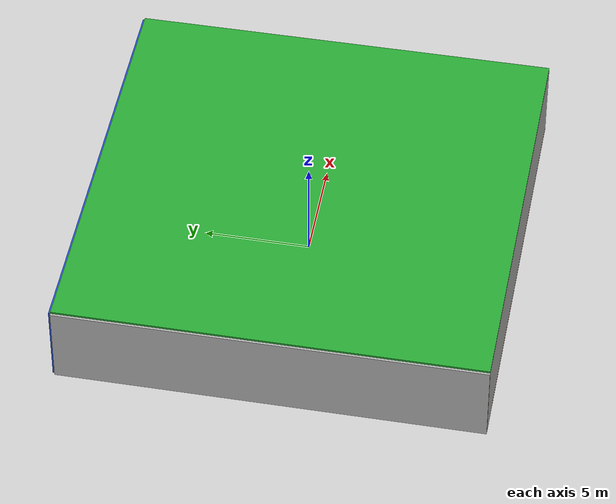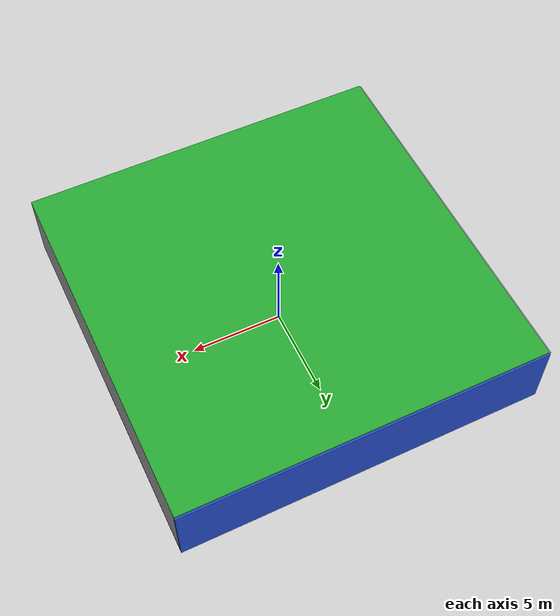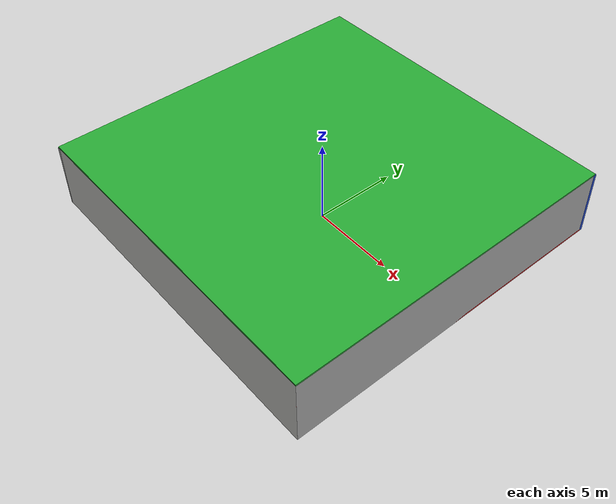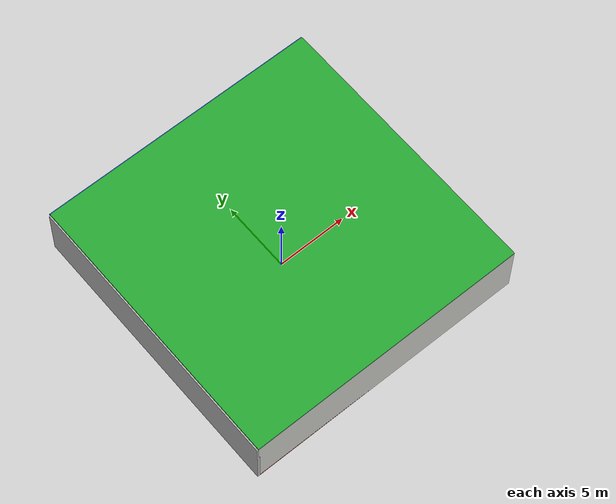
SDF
<sdf version="1.4">
 <world name="default">
  <physics type="ode">
   <max_step_size>0.001</max_step_size>
   <real_time_factor>1</real_time_factor>
   <real_time_update_rate>1000</real_time_update_rate>
   <gravity>0 0 -9.8</gravity>
  </physics>
  <scene><ambient>0.4 0.4 0.4 1</ambient><background>0.7 0.7 0.7 1</background><shadows>1</shadows></scene>
  <model name="Surrounding">
   <static>1</static>
   <link name="Ceiling">
    <collision name="Ceiling_Collision"><geometry><box><size>20 20 0.1</size></box></geometry></collision>
    <visual name="Ceiling_Visual">
     <geometry><box><size>20 20 0.1</size></box></geometry>
     <material>
      <script><uri>file://media/materials/scripts/gazebo.material</uri><name>Gazebo/GreenGlow</name></script>
     </material>
    </visual>
    <pose>0 0 4.05 0 0 0</pose>
   </link>
   <link name="Wall_South">
    <collision name="Wall_South_Collision">
     <geometry><box><size>20 0 4</size></box></geometry>
     <pose>0 0 2 0 -0 0</pose>
    </collision>
    <visual name="Wall_South_Visual">
     <pose>0 0 2 0 -0 0</pose>
     <geometry><box><size>20 0 4</size></box></geometry>
     <material>
      <script><uri>file://media/materials/scripts/gazebo.material</uri><name>Gazebo/CeilingTiled</name></script>
     </material>
    </visual>
    <velocity_decay><linear>0</linear><angular>0</angular></velocity_decay>
    <pose>0 -10 0 0 -0 0</pose>
   </link>
   <link name="Wall_East">
    <collision name="Wall_21_Collision">
     <geometry><box><size>20 0 4</size></box></geometry>
     <pose>0 0 2 0 -0 0</pose>
    </collision>
    <visual name="Wall_21_Visual">
     <pose>0 0 2 0 -0 0</pose>
     <geometry><box><size>20 0 4</size></box></geometry>
     <material>
      <script><uri>file://media/materials/scripts/gazebo.material</uri><name>Gazebo/LightOff</name></script>
     </material>
    </visual>
    <velocity_decay><linear>0</linear><angular>0</angular></velocity_decay>
    <pose>10 0 0 0 -0 1.5708</pose>
   </link>
   <link name="Wall_North">
    <collision name="Wall_22_Collision">
     <geometry><box><size>20 0.2 4</size></box></geometry>
     <pose>0 0 2 0 -0 0</pose>
    </collision>
    <visual name="Wall_22_Visual">
     <pose>0 0 2 0 -0 0</pose>
     <geometry><box><size>20 0.2 4</size></box></geometry>
     <material>
      <script><uri>file://media/materials/scripts/gazebo.material</uri><name>Gazebo/Blue</name></script>
     </material>
    </visual>
    <velocity_decay><linear>0</linear><angular>0</angular></velocity_decay>
    <pose>0 10 0 0 -0 0</pose>
   </link>
   <link name="Wall_West">
    <collision name="Wall_23_Collision">
     <geometry><box><size>20 0.2 4</size></box></geometry>
     <pose>0 0 2 0 -0 0</pose>
    </collision>
    <visual name="Wall_23_Visual">
     <pose>0 0 2 0 -0 0</pose>
     <geometry><box><size>20 0.2 4</size></box></geometry>
     <material>
      <script><uri>file://media/materials/scripts/gazebo.material</uri><name>Gazebo/LightOff</name></script>
     </material>
    </visual>
    <velocity_decay><linear>0</linear><angular>0</angular></velocity_decay>
    <pose>-10 0 0 0 0 -1.5708</pose>
   </link>
   <link name="Ground_link">
    <collision name="collision">
     <pose>0 0 .05 0 -0 0</pose>
     <geometry><box><size>20 20 0.1</size></box></geometry>
    </collision>
    <visual name="visual">
     <pose>0 0 .05 0 -0 0</pose>
     <geometry><box><size>20 20 0.1</size></box></geometry>
     <material>
      <script><uri>file://media/materials/scripts/gazebo.material</uri><name>Gazebo/RedGlow</name></script>
     </material>
    </visual>
   </link>
   <static>1</static>
  </model>
  <spherical_coordinates>
   <surface_model>EARTH_WGS84</surface_model>
   <latitude_deg>0</latitude_deg>
   <longitude_deg>0</longitude_deg>
   <elevation>0</elevation>
   <heading_deg>0</heading_deg>
  </spherical_coordinates>
  <light name="lightball_0" type="diffuse">
   <diffuse>0.8 0.8 0.8 1</diffuse>
   <specular>0.2 0.2 0.2 1</specular>
   <attenuation>
    <range>100</range>
    <constant>0.7</constant>
    <linear>0.01</linear>
    <quadratic>0.001</quadratic>
   </attenuation>
   <direction>-0.5 0.1 -0.9</direction>
   <pose>5.37861072525 -9.80470671198 1.82521220026 0 0 0</pose>
  </light>
  <light name="lightball_1" type="diffuse">
   <diffuse>0.8 0.8 0.8 1</diffuse>
   <specular>0.2 0.2 0.2 1</specular>
   <attenuation>
    <range>100</range>
    <constant>0.7</constant>
    <linear>0.01</linear>
    <quadratic>0.001</quadratic>
   </attenuation>
   <direction>-0.5 0.1 -0.9</direction>
   <pose>1.93598874748 -7.06972643808 3.73017154437 0 0 0</pose>
  </light>
  <light name="lightball_2" type="diffuse">
   <diffuse>0.8 0.8 0.8 1</diffuse>
   <specular>0.2 0.2 0.2 1</specular>
   <attenuation>
    <range>100</range>
    <constant>0.7</constant>
    <linear>0.01</linear>
    <quadratic>0.001</quadratic>
   </attenuation>
   <direction>-0.5 0.1 -0.9</direction>
   <pose>-7.72865881889 -9.126296807 3.65331092235 0 0 0</pose>
  </light>
  <light name="lightball_3" type="diffuse">
   <diffuse>0.8 0.8 0.8 1</diffuse>
   <specular>0.2 0.2 0.2 1</specular>
   <attenuation>
    <range>100</range>
    <constant>0.7</constant>
    <linear>0.01</linear>
    <quadratic>0.001</quadratic>
   </attenuation>
   <direction>-0.5 0.1 -0.9</direction>
   <pose>-4.82308542196 0.328752021273 2.34337296274 0 0 0</pose>
  </light>
  <light name="lightball_4" type="diffuse">
   <diffuse>0.8 0.8 0.8 1</diffuse>
   <specular>0.2 0.2 0.2 1</specular>
   <attenuation>
    <range>100</range>
    <constant>0.7</constant>
    <linear>0.01</linear>
    <quadratic>0.001</quadratic>
   </attenuation>
   <direction>-0.5 0.1 -0.9</direction>
   <pose>-5.78663603223 8.76218964628 1.04114003459 0 0 0</pose>
  </light>
  <light name="lightball_5" type="diffuse">
   <diffuse>0.8 0.8 0.8 1</diffuse>
   <specular>0.2 0.2 0.2 1</specular>
   <attenuation>
    <range>100</range>
    <constant>0.7</constant>
    <linear>0.01</linear>
    <quadratic>0.001</quadratic>
   </attenuation>
   <direction>-0.5 0.1 -0.9</direction>
   <pose>1.17226084027 5.73572111271 3.55470024689 0 0 0</pose>
  </light>
  <light name="lightball_6" type="diffuse">
   <diffuse>0.8 0.8 0.8 1</diffuse>
   <specular>0.2 0.2 0.2 1</specular>
   <attenuation>
    <range>100</range>
    <constant>0.7</constant>
    <linear>0.01</linear>
    <quadratic>0.001</quadratic>
   </attenuation>
   <direction>-0.5 0.1 -0.9</direction>
   <pose>-1.94846624499 8.85326668627 3.42929773147 0 0 0</pose>
  </light>
  <include>
   <uri>model://textured_shapes</uri>
   <pose>-7.10402690855 -5.41097915938 0 0 0 1.80835270284</pose>
  </include>
  <include><uri>model://table</uri><pose>-5.55035472145 -1.2958480136 0 0 0 2.28241707836</pose></include>
  <include>
   <uri>model://robocup_3Dsim_goal</uri>
   <pose>-3.42091032431 6.46308806813 0 0 0 2.43433143222</pose>
  </include>
  <include><uri>model://table</uri><pose>1.84084395601 -7.46478822133 0 0 0 0.966189017788</pose></include>
  <include><uri>model://table</uri><pose>6.91391906026 -8.33226436377 0 0 0 3.12152123442</pose></include>
 </world>
</sdf>

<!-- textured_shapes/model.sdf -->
<sdf version="1.6">
  <model name="textured_shapes">
    <pose>0 0 0.5 0 0 0</pose>
    <link name="box">
      <pose>0 -1.5 0 0 0 0</pose>
      <collision name="collision">
        <geometry>
          <box>
            <size>1 1 1</size>
          </box>
        </geometry>
      </collision>
      <visual name="visual">
        <geometry>
          <box>
            <size>1 1 1</size>
          </box>
        </geometry>
        <material>
          <script>
            <uri>model://../model_source/models/textured_shapes/materials/scripts</uri>
            <uri>model://../model_source/models/textured_shapes/materials/textures</uri>
            <name>TexturedShape/Squares</name>
          </script>
        </material>
      </visual>
    </link>
    <link name="sphere">
      <collision name="collision">
        <geometry>
          <sphere>
            <radius>0.5</radius>
          </sphere>
        </geometry>
      </collision>
      <visual name="visual">
        <geometry>
          <sphere>
            <radius>0.5</radius>
          </sphere>
        </geometry>
        <material>
          <script>
            <uri>model://../model_source/models/textured_shapes/materials/scripts</uri>
            <uri>model://../model_source/models/textured_shapes/materials/textures</uri>
            <name>TexturedShape/Squares</name>
          </script>
        </material>
      </visual>
    </link>
    <link name="cylinder">
      <pose>0 1.5 0 0 0 0</pose>
      <collision name="collision">
        <geometry>
          <cylinder>
            <radius>0.5</radius>
            <length>1</length>
          </cylinder>
        </geometry>
      </collision>
      <visual name="visual">
        <geometry>
          <cylinder>
            <radius>0.5</radius>
            <length>1</length>
          </cylinder>
        </geometry>
        <material>
          <script>
            <uri>model://../model_source/models/textured_shapes/materials/scripts</uri>
            <uri>model://../model_source/models/textured_shapes/materials/textures</uri>
            <name>TexturedShape/Squares</name>
          </script>
        </material>
      </visual>
    </link>
  </model>
</sdf>

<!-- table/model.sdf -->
<sdf version="1.5">
  <model name="table">
    <static>true</static>
    <link name="link">
      <collision name="surface">
        <pose>0 0 1.0 0 0 0</pose>
        <geometry>
          <box>
            <size>1.5 0.8 0.03</size>
          </box>
        </geometry>
        <surface>
          <friction>
            <ode>
              <mu>0.6</mu>
              <mu2>0.6</mu2>
            </ode>
          </friction>
        </surface>
      </collision>
      <visual name="visual1">
        <pose>0 0 1.0 0 0 0</pose>
        <geometry>
          <box>
            <size>1.5 0.8 0.03</size>
          </box>
        </geometry>
        <material>
          <script>
            <uri>model://media/materials/scripts/gazebo.material</uri>
            <name>Gazebo/Wood</name>
          </script>
        </material>
      </visual>
      <collision name="front_left_leg">
        <pose>0.68 0.38 0.5 0 0 0</pose>
        <geometry>
          <cylinder>
            <radius>0.02</radius>
            <length>1.0</length>
          </cylinder>
        </geometry>
      </collision>
      <visual name="front_left_leg">
        <pose>0.68 0.38 0.5 0 0 0</pose>
        <geometry>
          <cylinder>
            <radius>0.02</radius>
            <length>1.0</length>
          </cylinder>
        </geometry>
        <material>
          <script>
            <uri>model://media/materials/scripts/gazebo.material</uri>
            <name>Gazebo/Grey</name>
          </script>
        </material>
      </visual>
      <collision name="front_right_leg">
        <pose>0.68 -0.38 0.5 0 0 0</pose>
        <geometry>
          <cylinder>
            <radius>0.02</radius>
            <length>1.0</length>
          </cylinder>
        </geometry>
      </collision>
      <visual name="front_right_leg">
        <pose>0.68 -0.38 0.5 0 0 0</pose>
        <geometry>
          <cylinder>
            <radius>0.02</radius>
            <length>1.0</length>
          </cylinder>
        </geometry>
        <material>
          <script>
            <uri>model://media/materials/scripts/gazebo.material</uri>
            <name>Gazebo/Grey</name>
          </script>
        </material>
      </visual>
      <collision name="back_right_leg">
        <pose>-0.68 -0.38 0.5 0 0 0</pose>
        <geometry>
          <cylinder>
            <radius>0.02</radius>
            <length>1.0</length>
          </cylinder>
        </geometry>
      </collision>
      <visual name="back_right_leg">
        <pose>-0.68 -0.38 0.5 0 0 0</pose>
        <geometry>
          <cylinder>
            <radius>0.02</radius>
            <length>1.0</length>
          </cylinder>
        </geometry>
        <material>
          <script>
            <uri>model://media/materials/scripts/gazebo.material</uri>
            <name>Gazebo/Grey</name>
          </script>
        </material>
      </visual>
      <collision name="back_left_leg">
        <pose>-0.68 0.38 0.5 0 0 0</pose>
        <geometry>
          <cylinder>
            <radius>0.02</radius>
            <length>1.0</length>
          </cylinder>
        </geometry>
      </collision>
      <visual name="back_left_leg">
        <pose>-0.68 0.38 0.5 0 0 0</pose>
        <geometry>
          <cylinder>
            <radius>0.02</radius>
            <length>1.0</length>
          </cylinder>
        </geometry>
        <material>
          <script>
            <uri>model://media/materials/scripts/gazebo.material</uri>
            <name>Gazebo/Grey</name>
          </script>
        </material>
      </visual>
    </link>
  </model>
</sdf>

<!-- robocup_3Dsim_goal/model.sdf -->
<sdf version="1.5">
  <model name="robocup_3d_goal">
    <static>true</static>
    <link name="left_post">
      <pose>0 1.05 0.45 0 0 0</pose>
      <collision name="collision">
        <geometry>
          <cylinder>
            <radius>0.05</radius>
            <length>0.9</length>
          </cylinder>
        </geometry>
      </collision>
      <visual name="visual">
        <geometry>
          <cylinder>
            <radius>0.05</radius>
            <length>0.9</length>
          </cylinder>
        </geometry>
        <material>
          <script>
            <uri>file://media/materials/scripts/gazebo.material</uri>
            <name>Gazebo/ZincYellow</name>
          </script>
        </material>
      </visual>
    </link>
    <link name="left_support_horiz_lower">
      <pose>0.30 1.05 0.01 0 0 0</pose>
      <collision name="collision">
        <geometry>
          <box>
            <size>0.50 0.02 0.02</size>
          </box>
        </geometry>
      </collision>
      <visual name="visual">
        <geometry>
          <box>
            <size>0.50 0.02 0.02</size>
          </box>
        </geometry>
        <material>
          <script>
            <uri>file://media/materials/scripts/gazebo.material</uri>
            <name>Gazebo/White</name>
          </script>
        </material>
      </visual>
    </link>
    <link name="left_support_horiz_upper">
      <pose>0.30 1.05 0.79 0 0 0</pose>
      <collision name="collision">
        <geometry>
          <box>
            <size>0.50 0.02 0.02</size>
          </box>
        </geometry>
      </collision>
      <visual name="visual">
        <geometry>
          <box>
            <size>0.50 0.02 0.02</size>
          </box>
        </geometry>
        <material>
          <script>
            <uri>file://media/materials/scripts/gazebo.material</uri>
            <name>Gazebo/White</name>
          </script>
        </material>
      </visual>
    </link>
    <link name="left_support_vertical">
      <pose>0.56 1.05 0.4 0 1.5708 0</pose>
      <collision name="collision">
        <geometry>
          <box>
            <size>0.80 0.02 0.02</size>
          </box>
        </geometry>
      </collision>
      <visual name="visual">
        <geometry>
          <box>
            <size>0.80 0.02 0.02</size>
          </box>
        </geometry>
        <material>
          <script>
            <uri>file://media/materials/scripts/gazebo.material</uri>
            <name>Gazebo/White</name>
          </script>
        </material>
      </visual>
    </link>
    <link name="right_support_horiz_lower">
      <pose>0.30 -1.05 0.01 0 0 0</pose>
      <collision name="collision">
        <geometry>
          <box>
            <size>0.50 0.02 0.02</size>
          </box>
        </geometry>
      </collision>
      <visual name="visual">
        <geometry>
          <box>
            <size>0.50 0.02 0.02</size>
          </box>
        </geometry>
        <material>
          <script>
            <uri>file://media/materials/scripts/gazebo.material</uri>
            <name>Gazebo/White</name>
          </script>
        </material>
      </visual>
    </link>
    <link name="right_support_horiz_upper">
      <pose>0.30 -1.05 0.79 0 0 0</pose>
      <collision name="collision">
        <geometry>
          <box>
            <size>0.50 0.02 0.02</size>
          </box>
        </geometry>
      </collision>
      <visual name="visual">
        <geometry>
          <box>
            <size>0.50 0.02 0.02</size>
          </box>
        </geometry>
        <material>
          <script>
            <uri>file://media/materials/scripts/gazebo.material</uri>
            <name>Gazebo/White</name>
          </script>
        </material>
      </visual>
    </link>
    <link name="right_support_vertical">
      <pose>0.56 -1.05 0.4 0 1.5708 0</pose>
      <collision name="collision">
        <geometry>
          <box>
            <size>0.80 0.02 0.02</size>
          </box>
        </geometry>
      </collision>
      <visual name="visual">
        <geometry>
          <box>
            <size>0.80 0.02 0.02</size>
          </box>
        </geometry>
        <material>
          <script>
            <uri>file://media/materials/scripts/gazebo.material</uri>
            <name>Gazebo/White</name>
          </script>
        </material>
      </visual>
    </link>
    <link name="center_support_horiz_lower">
      <pose>0.56 0 0.01 0 1.5708 0</pose>
      <collision name="collision">
        <geometry>
          <box>
            <size>0.02 2.08 0.02</size>
          </box>
        </geometry>
      </collision>
      <visual name="visual">
        <geometry>
          <box>
            <size>0.02 2.08 0.02</size>
          </box>
        </geometry>
        <material>
          <script>
            <uri>file://media/materials/scripts/gazebo.material</uri>
            <name>Gazebo/White</name>
          </script>
        </material>
      </visual>
    </link>
    <link name="center_support_horiz_upper">
      <pose>0.56 0 0.79 0 1.5708 0</pose>
      <collision name="collision">
        <geometry>
          <box>
            <size>0.02 2.08 0.02</size>
          </box>
        </geometry>
      </collision>
      <visual name="visual">
        <geometry>
          <box>
            <size>0.02 2.08 0.02</size>
          </box>
        </geometry>
        <material>
          <script>
            <uri>file://media/materials/scripts/gazebo.material</uri>
            <name>Gazebo/White</name>
          </script>
        </material>
      </visual>
    </link>
    <link name="right_post">
      <pose>0 -1.05 0.45 0 0 0</pose>
      <collision name="collision">
        <geometry>
          <cylinder>
            <radius>0.05</radius>
            <length>0.9</length>
          </cylinder>
        </geometry>
      </collision>
      <visual name="visual">
        <geometry>
          <cylinder>
            <radius>0.05</radius>
            <length>0.9</length>
          </cylinder>
        </geometry>
        <material>
          <script>
            <uri>file://media/materials/scripts/gazebo.material</uri>
            <name>Gazebo/ZincYellow</name>
          </script>
        </material>
      </visual>
    </link>
    <link name="crossbar">
      <pose>0 0 0.85 1.57 1.57 0</pose>
      <collision name="collision">
        <geometry>
          <cylinder>
            <radius>0.05</radius>
            <length>2.0</length>
          </cylinder>
        </geometry>
      </collision>
      <visual name="visual">
        <geometry>
          <cylinder>
            <radius>0.05</radius>
            <length>2.0</length>
          </cylinder>
        </geometry>
        <material>
          <script>
            <uri>file://media/materials/scripts/gazebo.material</uri>
            <name>Gazebo/ZincYellow</name>
          </script>
        </material>
      </visual>
    </link>
    <link name="center_net">
      <pose>0.56 0 0.40 0 0 0</pose>
      <collision name="collision">
        <geometry>
          <box>
            <size>0.01 2.1 0.80</size>
          </box>
        </geometry>
      </collision>
      <visual name="visual">
        <geometry>
          <box>
            <size>0.01 2.1 0.80</size>
          </box>
        </geometry>
        <material>
          <script>
            <uri>model://../model_source/models/robocup09_spl_field/materials/scripts/</uri>
            <uri>model://../model_source/models/robocup09_spl_field/materials/textures/</uri>
            <name>RoboCup/Net</name>
          </script>
        </material>
      </visual>
    </link>
    <link name="left_net">
      <pose>0.30 1.05 0.40 0 0 0</pose>
      <collision name="collision">
        <geometry>
          <box>
            <size>0.50 0.01 0.76</size>
          </box>
        </geometry>
      </collision>
      <visual name="visual">
        <geometry>
          <box>
            <size>0.50 0.01 0.76</size>
          </box>
        </geometry>
        <material>
          <script>
            <uri>model://../model_source/models/robocup09_spl_field/materials/scripts/</uri>
            <uri>model://../model_source/models/robocup09_spl_field/materials/textures/</uri>
            <name>RoboCup/Net</name>
          </script>
        </material>
      </visual>
    </link>
    <link name="right_net">
      <pose>0.30 -1.05 0.40 0 0 0</pose>
      <collision name="collision">
        <geometry>
          <box>
            <size>0.50 0.01 0.76</size>
          </box>
        </geometry>
      </collision>
      <visual name="visual">
        <geometry>
          <box>
            <size>0.50 0.01 0.76</size>
          </box>
        </geometry>
        <material>
          <script>
            <uri>model://../model_source/models/robocup09_spl_field/materials/scripts/</uri>
            <uri>model://../model_source/models/robocup09_spl_field/materials/textures/</uri>
            <name>RoboCup/Net</name>
          </script>
        </material>
      </visual>
    </link>
  </model>
</sdf>
